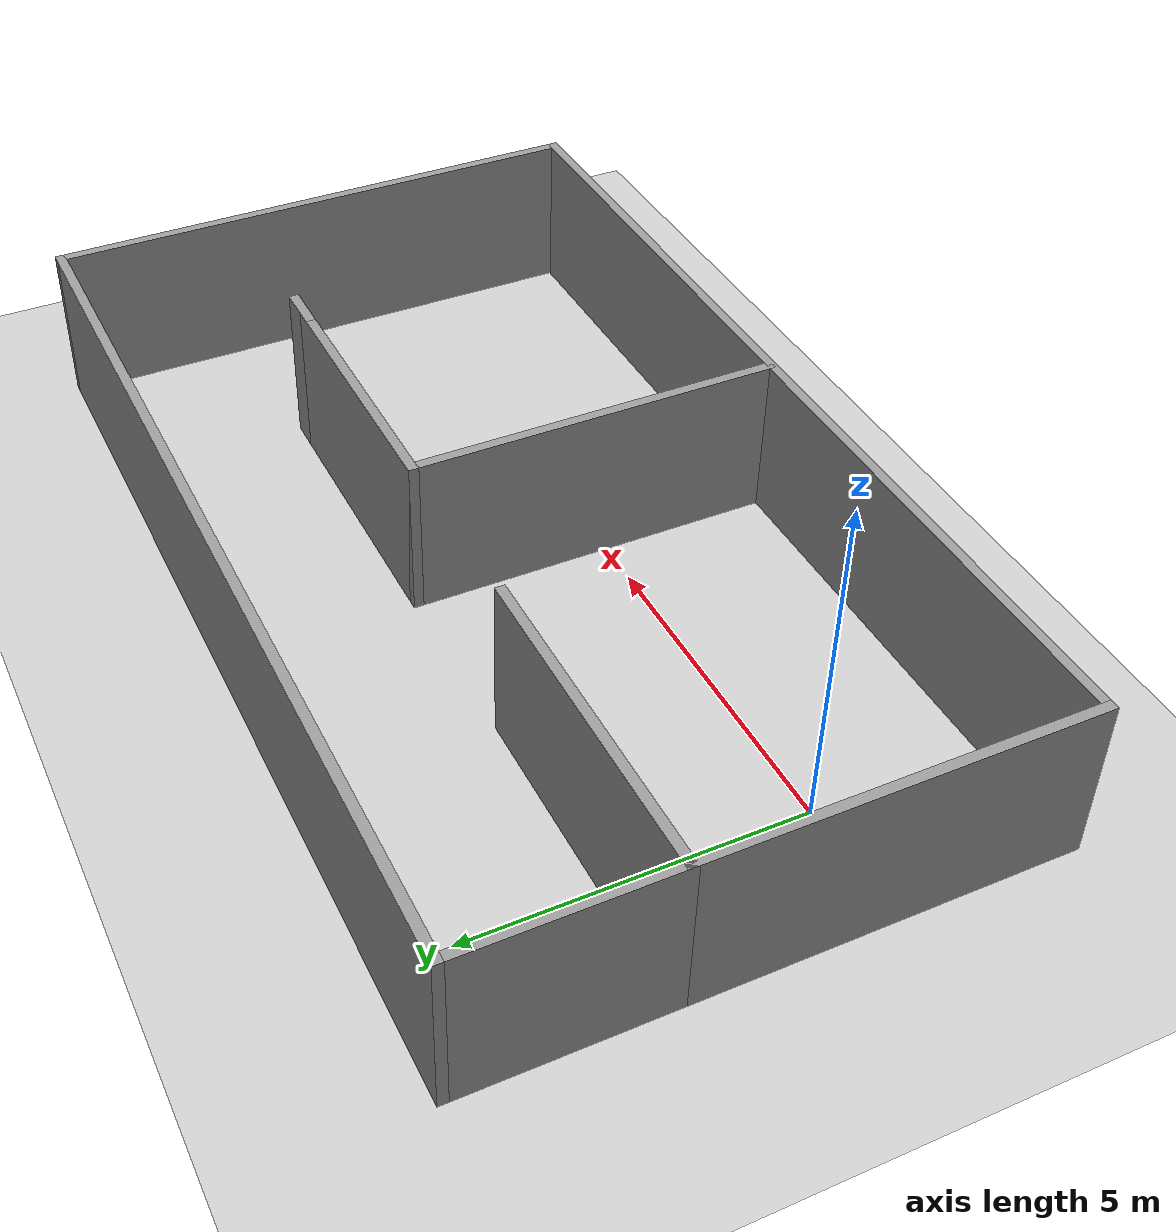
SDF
<sdf version="1.7">
 <world name="default">
  <light name="sun" type="directional">
   <pose>0 0 10 0 -0 0</pose>
   <diffuse>0.8 0.8 0.8 1</diffuse>
   <specular>0.2 0.2 0.2 1</specular>
   <attenuation>
    <range>1000</range>
    <constant>0.9</constant>
    <linear>0.01</linear>
    <quadratic>0.001</quadratic>
   </attenuation>
   <direction>-0.5 0.1 -0.9</direction>
   <spot><inner_angle>0</inner_angle><outer_angle>0</outer_angle><falloff>0</falloff></spot>
  </light>
  <model name="ground_plane">
   <static>1</static>
   <link name="link">
    <collision name="collision">
     <geometry><plane><normal>0 0 1</normal><size>100 100</size></plane></geometry>
     <surface><friction><ode><mu>100</mu><mu2>50</mu2></ode></friction></surface>
    </collision>
    <visual name="visual">
     <cast_shadows>0</cast_shadows>
     <geometry><plane><normal>0 0 1</normal><size>100 100</size></plane></geometry>
     <material>
      <script><uri>file://media/materials/scripts/gazebo.material</uri><name>Gazebo/Grey</name></script>
     </material>
    </visual>
   </link>
  </model>
  <gravity>0 0 -9.8</gravity>
  <magnetic_field>6e-06 2.3e-05 -4.2e-05</magnetic_field>
  <atmosphere type="adiabatic"/>
  <physics type="ode">
   <max_step_size>0.001</max_step_size>
   <real_time_factor>1</real_time_factor>
   <real_time_update_rate>1000</real_time_update_rate>
  </physics>
  <scene><ambient>0.4 0.4 0.4 1</ambient><background>0.7 0.7 0.7 1</background><shadows>1</shadows></scene>
  <spherical_coordinates>
   <surface_model>EARTH_WGS84</surface_model>
   <latitude_deg>0</latitude_deg>
   <longitude_deg>0</longitude_deg>
   <elevation>0</elevation>
   <heading_deg>0</heading_deg>
  </spherical_coordinates>
  <model name="room">
   <pose>5.57775 1.65264 0 0 -0 0</pose>
   <link name="Wall_1">
    <collision name="Wall_1_Collision">
     <geometry><box><size>5.75 0.15 2.5</size></box></geometry>
     <pose>0 0 1.25 0 -0 0</pose>
    </collision>
    <visual name="Wall_1_Visual">
     <pose>0 0 1.25 0 -0 0</pose>
     <geometry><box><size>5.75 0.15 2.5</size></box></geometry>
     <material>
      <script><uri>file://media/materials/scripts/gazebo.material</uri><name>Gazebo/Grey</name></script>
      <ambient>1 1 1 1</ambient>
     </material>
     <meta><layer>0</layer></meta>
    </visual>
    <pose>-7.425 -1.5 0 0 -0 -1.5708</pose>
   </link>
   <link name="Wall_11">
    <collision name="Wall_11_Collision">
     <geometry><box><size>4.25 0.15 2.5</size></box></geometry>
     <pose>0 0 1.25 0 -0 0</pose>
    </collision>
    <visual name="Wall_11_Visual">
     <pose>0 0 1.25 0 -0 0</pose>
     <geometry><box><size>4.25 0.15 2.5</size></box></geometry>
     <material>
      <script><uri>file://media/materials/scripts/gazebo.material</uri><name>Gazebo/Grey</name></script>
      <ambient>1 1 1 1</ambient>
     </material>
     <meta><layer>0</layer></meta>
    </visual>
    <pose>2.26816 1.36034 0 0 -0 0</pose>
   </link>
   <link name="Wall_13">
    <collision name="Wall_13_Collision">
     <geometry><box><size>0.75 0.15 2.5</size></box></geometry>
     <pose>0 0 1.25 0 -0 0</pose>
    </collision>
    <visual name="Wall_13_Visual">
     <pose>0 0 1.25 0 -0 0</pose>
     <geometry><box><size>0.75 0.15 2.5</size></box></geometry>
     <material>
      <script><uri>file://media/materials/scripts/gazebo.material</uri><name>Gazebo/Grey</name></script>
      <ambient>1 1 1 1</ambient>
     </material>
     <meta><layer>0</layer></meta>
    </visual>
    <pose>4.49997 1.36 0 0 -0 3.14159</pose>
   </link>
   <link name="Wall_2">
    <collision name="Wall_2_Collision">
     <geometry><box><size>15 0.15 2.5</size></box></geometry>
     <pose>0 0 1.25 0 -0 0</pose>
    </collision>
    <visual name="Wall_2_Visual">
     <pose>0 0 1.25 0 -0 0</pose>
     <geometry><box><size>15 0.15 2.5</size></box></geometry>
     <material>
      <script><uri>file://media/materials/scripts/gazebo.material</uri><name>Gazebo/Grey</name></script>
      <ambient>1 1 1 1</ambient>
     </material>
     <meta><layer>0</layer></meta>
    </visual>
    <pose>-0 -4.3 0 0 -0 0</pose>
   </link>
   <link name="Wall_3">
    <collision name="Wall_3_Collision">
     <geometry><box><size>8.75 0.15 2.5</size></box></geometry>
     <pose>0 0 1.25 0 -0 0</pose>
    </collision>
    <visual name="Wall_3_Visual">
     <pose>0 0 1.25 0 -0 0</pose>
     <geometry><box><size>8.75 0.15 2.5</size></box></geometry>
     <material>
      <script><uri>file://media/materials/scripts/gazebo.material</uri><name>Gazebo/Grey</name></script>
      <ambient>1 1 1 1</ambient>
     </material>
     <meta><layer>0</layer></meta>
    </visual>
    <pose>7.425 -0 0 0 -0 1.5708</pose>
   </link>
   <link name="Wall_4">
    <collision name="Wall_4_Collision">
     <geometry><box><size>15 0.15 2.5</size></box></geometry>
     <pose>0 0 1.25 0 -0 0</pose>
    </collision>
    <visual name="Wall_4_Visual">
     <pose>0 0 1.25 0 -0 0</pose>
     <geometry><box><size>15 0.15 2.5</size></box></geometry>
     <material>
      <script><uri>file://media/materials/scripts/gazebo.material</uri><name>Gazebo/Grey</name></script>
      <ambient>1 1 1 1</ambient>
     </material>
     <meta><layer>0</layer></meta>
    </visual>
    <pose>-0 4.3 0 0 -0 3.14159</pose>
   </link>
   <link name="Wall_5">
    <collision name="Wall_5_Collision">
     <geometry><box><size>3.15 0.15 2.5</size></box></geometry>
     <pose>0 0 1.25 0 -0 0</pose>
    </collision>
    <visual name="Wall_5_Visual">
     <pose>0 0 1.25 0 -0 0</pose>
     <geometry><box><size>3.15 0.15 2.5</size></box></geometry>
     <material>
      <script><uri>file://media/materials/scripts/gazebo.material</uri><name>Gazebo/Grey</name></script>
      <ambient>1 1 1 1</ambient>
     </material>
     <meta><layer>0</layer></meta>
    </visual>
    <pose>-7.425 2.8 0 0 -0 -1.5708</pose>
   </link>
   <link name="Wall_7">
    <collision name="Wall_7_Collision">
     <geometry><box><size>5 0.15 2.5</size></box></geometry>
     <pose>0 0 1.25 0 -0 0</pose>
    </collision>
    <visual name="Wall_7_Visual">
     <pose>0 0 1.25 0 -0 0</pose>
     <geometry><box><size>5 0.15 2.5</size></box></geometry>
     <material>
      <script><uri>file://media/materials/scripts/gazebo.material</uri><name>Gazebo/Grey</name></script>
      <ambient>1 1 1 1</ambient>
     </material>
     <meta><layer>0</layer></meta>
    </visual>
    <pose>-5 1.3 0 0 -0 0</pose>
   </link>
   <link name="Wall_9">
    <collision name="Wall_9_Collision">
     <geometry><box><size>5.75 0.15 2.5</size></box></geometry>
     <pose>0 0 1.25 0 -0 0</pose>
    </collision>
    <visual name="Wall_9_Visual">
     <pose>0 0 1.25 0 -0 0</pose>
     <geometry><box><size>5.75 0.15 2.5</size></box></geometry>
     <material>
      <script><uri>file://media/materials/scripts/gazebo.material</uri><name>Gazebo/Grey</name></script>
      <ambient>1 1 1 1</ambient>
     </material>
     <meta><layer>0</layer></meta>
    </visual>
    <pose>0.218157 -1.43966 0 0 -0 -1.5708</pose>
   </link>
   <static>1</static>
  </model>
 </world>
</sdf>
